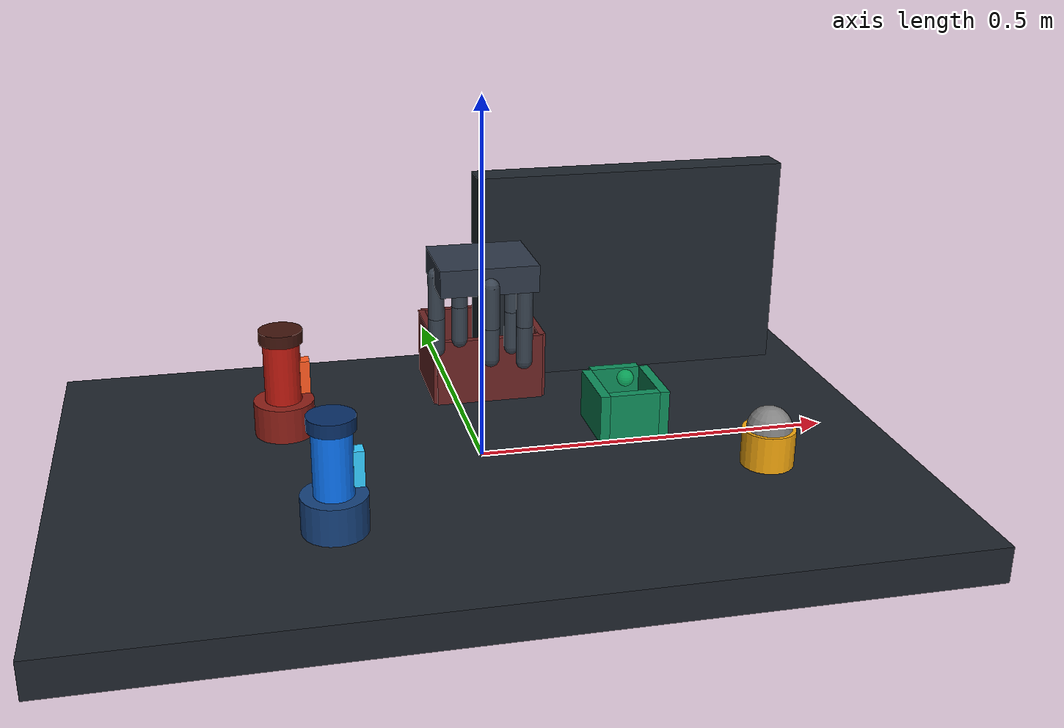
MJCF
<mujoco model="tactile fuse relay">
  <compiler angle="degree" autolimits="true"/>
  <option timestep="0.004" integrator="implicitfast" solver="Newton" iterations="50" gravity="0 0 -9.81"/>
  <visual><global offwidth="960" offheight="540"/><quality shadowsize="2048"/></visual>
  <default>
    <joint damping="2" armature="0.02"/>
    <geom friction="1.2 0.01 0.001" condim="4" solref="0.018 1" solimp="0.90 0.98 0.002"/>
    <position kp="180" kv="18"/>
    <default class="finger"><geom type="capsule" size="0.011" contype="2" conaffinity="1" rgba="0.22 0.26 0.31 1"/></default>
    <default class="tip"><geom type="sphere" size="0.014" contype="2" conaffinity="1" rgba="0.95 0.55 0.18 1"/><site type="sphere" size="0.022" rgba="1 0.5 0 0"/></default>
  </default>

  <asset>
    <texture name="grid" type="2d" builtin="checker" rgb1="0.09 0.11 0.14" rgb2="0.14 0.17 0.20" width="512" height="512"/>
    <material name="grid" texture="grid" texrepeat="5 4" reflectance="0.12"/>
  </asset>

  <worldbody>
    <light pos="0 -1 2" dir="0 0 -1" diffuse="0.9 0.9 0.9"/>
    <camera name="judge" pos="0.72 -0.92 0.68" xyaxes="0.79 0.61 0 -0.28 0.36 0.89"/>
    <geom name="bench" type="box" pos="0 0 -0.025" size="0.58 0.38 0.025" material="grid"/>
    <geom name="backboard" type="box" pos="0.29 0.29 0.16" size="0.24 0.025 0.16" rgba="0.12 0.15 0.18 1"/>

    <!-- Failed-fuse extraction bay, replacement rack, insertion socket and reject bin. -->
    <geom name="failed_bay" type="cylinder" pos="-0.26 0.13 0.025" size="0.043 0.025" rgba="0.55 0.12 0.09 1"/>
    <geom name="spare_rack" type="cylinder" pos="-0.22 -0.17 0.025" size="0.043 0.025" rgba="0.08 0.25 0.48 1"/>
    <geom name="socket" type="cylinder" pos="0.22 0.05 0.006" size="0.049 0.006" rgba="0.05 0.55 0.35 1"/>
    <geom type="box" pos="0.263 0.05 0.035" size="0.007 0.050 0.035" rgba="0.05 0.55 0.35 1"/>
    <geom type="box" pos="0.177 0.05 0.035" size="0.007 0.050 0.035" rgba="0.05 0.55 0.35 1"/>
    <geom type="box" pos="0.22 0.105 0.035" size="0.036 0.007 0.035" rgba="0.05 0.55 0.35 1"/>
    <geom type="box" pos="0.22 0.007 0.035" size="0.036 0.007 0.035" rgba="0.05 0.55 0.35 1"/>
    <site name="socket_site" pos="0.22 0.05 0.075" size="0.012" rgba="0.1 1 0.5 0.35"/>
    <!-- Open containment tray: unlike a solid pedestal, its four walls keep
         the released failed fuse inside under normal rigid-body dynamics. -->
    <geom name="reject_bin" type="box" pos="0.05 0.25 0.006" size="0.075 0.065 0.006" rgba="0.35 0.12 0.12 1"/>
    <geom type="box" pos="-0.030 0.25 0.050" size="0.005 0.070 0.050" rgba="0.42 0.14 0.14 1"/>
    <geom type="box" pos="0.130 0.25 0.050" size="0.005 0.070 0.050" rgba="0.42 0.14 0.14 1"/>
    <geom type="box" pos="0.05 0.180 0.050" size="0.080 0.005 0.050" rgba="0.42 0.14 0.14 1"/>
    <geom type="box" pos="0.05 0.320 0.050" size="0.080 0.005 0.050" rgba="0.42 0.14 0.14 1"/>

    <body name="latch" pos="0.35 -0.16 0.055">
      <!-- A spring return prevents gravity from satisfying the interlock by itself. -->
      <joint name="latch_slide" type="slide" axis="0 0 -1" range="0 0.025"
             damping="8" stiffness="650" springref="0"/>
      <geom name="latch_geom" type="cylinder" size="0.035 0.025" rgba="0.95 0.65 0.05 1"/>
      <site name="latch_touch" pos="0 0 0.025" size="0.03"/>
    </body>

    <body name="failed_fuse" pos="-0.26 0.13 0.085">
      <freejoint name="failed_free"/>
      <geom name="failed_core" type="cylinder" size="0.026 0.06" mass="0.075" conaffinity="3" rgba="0.75 0.10 0.06 1"/>
      <geom type="cylinder" pos="0 0 0.062" size="0.031 0.009" mass="0.01" conaffinity="3" rgba="0.25 0.08 0.05 1"/>
      <geom name="failed_key" type="box" pos="0.031 0 0" size="0.007 0.010 0.024" mass="0.004" conaffinity="3" rgba="1.0 0.35 0.12 1"/>
      <site name="failed_site" size="0.01"/>
    </body>
    <body name="spare_fuse" pos="-0.22 -0.17 0.085">
      <freejoint name="spare_free"/>
      <geom name="spare_core" type="cylinder" size="0.026 0.06" mass="0.075" conaffinity="3" rgba="0.04 0.45 0.95 1"/>
      <geom type="cylinder" pos="0 0 0.062" size="0.031 0.009" mass="0.01" conaffinity="3" rgba="0.03 0.18 0.40 1"/>
      <geom name="spare_key" type="box" pos="0.031 0 0" size="0.007 0.010 0.024" mass="0.004" conaffinity="3" rgba="0.20 0.80 1.0 1"/>
      <site name="spare_site" size="0.01"/>
    </body>

    <!-- 14-DOF gantry hand: XYZ + wrist yaw + two joints per finger. -->
    <body name="hand_x" pos="0 0 0.27">
      <inertial pos="0 0 0" mass="0.5" diaginertia="0.005 0.005 0.005"/>
      <joint name="gantry_x" type="slide" axis="1 0 0" range="-0.42 0.42"/>
      <body name="hand_y"><inertial pos="0 0 0" mass="0.5" diaginertia="0.005 0.005 0.005"/><joint name="gantry_y" type="slide" axis="0 1 0" range="-0.30 0.30"/>
        <body name="hand_z"><inertial pos="0 0 0" mass="0.5" diaginertia="0.005 0.005 0.005"/><joint name="gantry_z" type="slide" axis="0 0 1" range="-0.13 0.18"/>
          <body name="palm"><joint name="wrist_yaw" type="hinge" axis="0 0 1" range="-110 110"/>
            <geom type="box" size="0.065 0.055 0.018" contype="2" conaffinity="1" rgba="0.18 0.22 0.28 1"/>
            <site name="palm_site" size="0.008" rgba="0 1 1 1"/>

            <body name="thumb1" pos="0 -0.060 -0.005">
              <joint name="thumb_base" type="hinge" axis="1 0 0" range="-10 75"/>
              <geom class="finger" fromto="0 0 0 0 0 -0.055"/>
              <body name="thumb2" pos="0 0 -0.055"><joint name="thumb_tip" type="hinge" axis="1 0 0" range="0 85"/>
                <geom class="finger" fromto="0 0 0 0 0 -0.043"/><site name="thumb_touch" class="tip" pos="0 0 -0.022" size="0.040"/></body>
            </body>
            <body name="index1" pos="0.050 -0.036 -0.005">
              <joint name="index_base" type="hinge" axis="0.588 0.809 0" range="-10 85"/><geom class="finger" fromto="0 0 0 0 0 -0.065"/>
              <body pos="0 0 -0.065"><joint name="index_tip" type="hinge" axis="0.588 0.809 0" range="0 95"/><geom class="finger" fromto="0 0 0 0 0 -0.05"/><site name="index_touch" class="tip" pos="0 0 -0.025" size="0.045"/></body>
            </body>
            <body name="middle1" pos="0.050 0.036 -0.005">
              <joint name="middle_base" type="hinge" axis="-0.588 0.809 0" range="-10 85"/><geom class="finger" fromto="0 0 0 0 0 -0.07"/>
              <body pos="0 0 -0.07"><joint name="middle_tip" type="hinge" axis="-0.588 0.809 0" range="0 95"/><geom class="finger" fromto="0 0 0 0 0 -0.052"/><site name="middle_touch" class="tip" pos="0 0 -0.026" size="0.045"/></body>
            </body>
            <body name="ring1" pos="-0.019 0.058 -0.005">
              <joint name="ring_base" type="hinge" axis="-0.951 -0.309 0" range="-10 85"/><geom class="finger" fromto="0 0 0 0 0 -0.066"/>
              <body pos="0 0 -0.066"><joint name="ring_tip" type="hinge" axis="-0.951 -0.309 0" range="0 95"/><geom class="finger" fromto="0 0 0 0 0 -0.049"/><site name="ring_touch" class="tip" pos="0 0 -0.025" size="0.043"/></body>
            </body>
            <body name="little1" pos="-0.061 0 -0.005">
              <joint name="little_base" type="hinge" axis="0 -1 0" range="-10 85"/><geom class="finger" fromto="0 0 0 0 0 -0.059"/>
              <body pos="0 0 -0.059"><joint name="little_tip" type="hinge" axis="0 -1 0" range="0 95"/><geom class="finger" fromto="0 0 0 0 0 -0.044"/><site name="little_touch" class="tip" pos="0 0 -0.022" size="0.040"/></body>
            </body>
          </body>
        </body>
      </body>
    </body>
  </worldbody>

  <equality>
    <weld name="hold_failed" body1="palm" body2="failed_fuse" active="false"
          relpose="0 0 -0.120 1 0 0 0" solref="0.012 1"/>
    <weld name="hold_spare" body1="palm" body2="spare_fuse" active="false"
          relpose="0 0 -0.140 1 0 0 0" solref="0.012 1"/>
  </equality>
  <contact>
    <exclude body1="hand_x" body2="hand_y"/><exclude body1="hand_y" body2="hand_z"/>
  </contact>
  <actuator>
    <position name="x" joint="gantry_x" kp="1200" kv="80"/><position name="y" joint="gantry_y" kp="1200" kv="80"/>
    <position name="z" joint="gantry_z" kp="1200" kv="80"/><position name="yaw" joint="wrist_yaw" kp="150" kv="15"/>
    <position name="thumb0" joint="thumb_base" kp="10" kv="1.5" forcelimited="true" forcerange="-3 3"/><position name="thumb1" joint="thumb_tip" kp="10" kv="1.5" forcelimited="true" forcerange="-3 3"/>
    <position name="index0" joint="index_base" kp="10" kv="1.5" forcelimited="true" forcerange="-3 3"/><position name="index1" joint="index_tip" kp="10" kv="1.5" forcelimited="true" forcerange="-3 3"/>
    <position name="middle0" joint="middle_base" kp="10" kv="1.5" forcelimited="true" forcerange="-3 3"/><position name="middle1" joint="middle_tip" kp="10" kv="1.5" forcelimited="true" forcerange="-3 3"/>
    <position name="ring0" joint="ring_base" kp="10" kv="1.5" forcelimited="true" forcerange="-3 3"/><position name="ring1" joint="ring_tip" kp="10" kv="1.5" forcelimited="true" forcerange="-3 3"/>
    <position name="little0" joint="little_base" kp="10" kv="1.5" forcelimited="true" forcerange="-3 3"/><position name="little1" joint="little_tip" kp="10" kv="1.5" forcelimited="true" forcerange="-3 3"/>
    <position name="latch" joint="latch_slide" kp="3500" kv="45"/>
  </actuator>
  <sensor>
    <framepos name="palm_pos" objtype="site" objname="palm_site"/>
    <framepos name="failed_pos" objtype="site" objname="failed_site"/>
    <framepos name="spare_pos" objtype="site" objname="spare_site"/>
    <framequat name="spare_quat" objtype="xbody" objname="spare_fuse"/>
    <framepos name="socket_pos" objtype="site" objname="socket_site"/>
    <touch name="thumb_force" site="thumb_touch"/><touch name="index_force" site="index_touch"/>
    <touch name="middle_force" site="middle_touch"/><touch name="ring_force" site="ring_touch"/><touch name="little_force" site="little_touch"/>
    <touch name="latch_force" site="latch_touch"/>
    <jointpos name="wrist_angle" joint="wrist_yaw"/><jointpos name="latch_depth" joint="latch_slide"/>
    <accelerometer name="spare_accel" site="spare_site"/>
  </sensor>
</mujoco>
